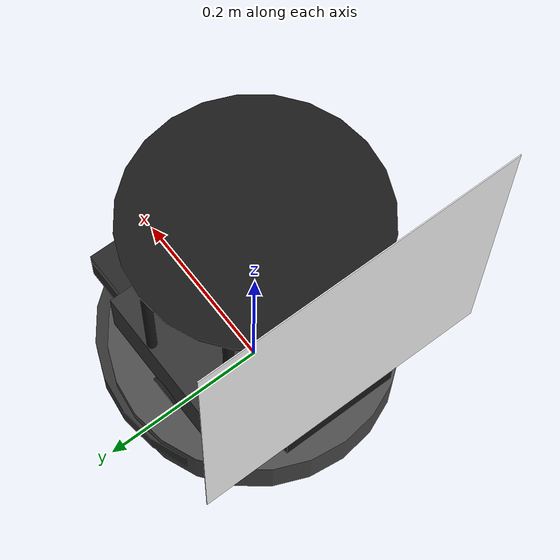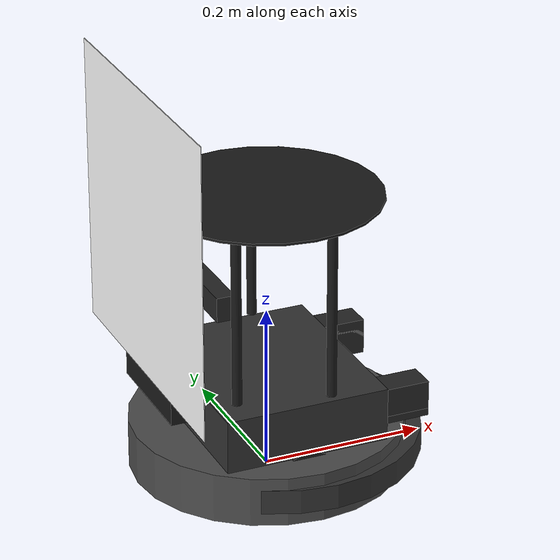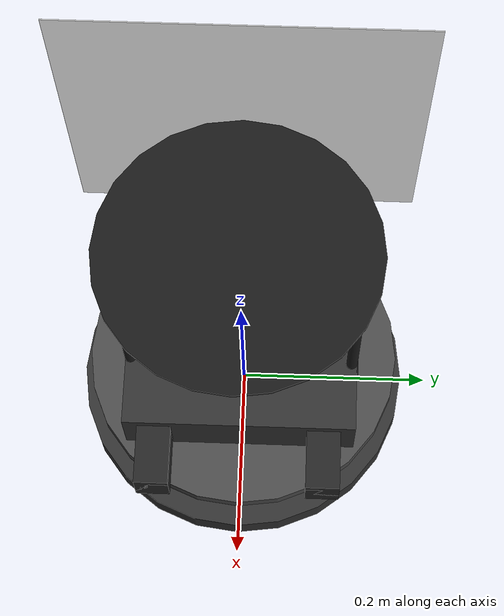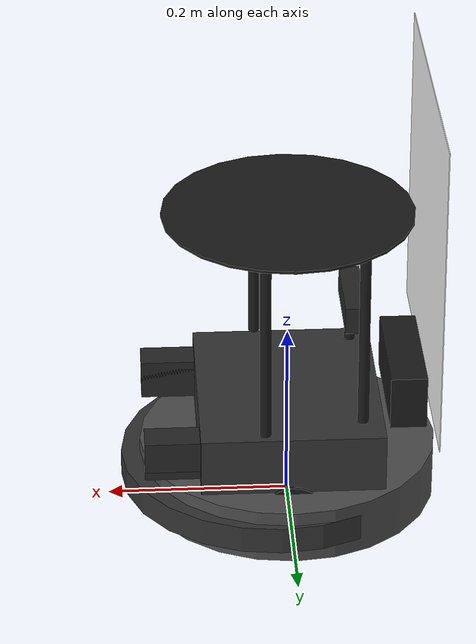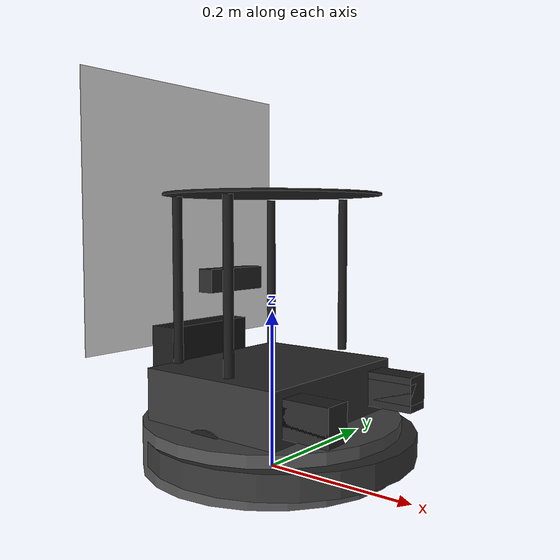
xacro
<?xml version="1.0" ?>
<robot name="turtlebot4" xmlns:xacro="http://ros.org/wiki/xacro">
  <!-- Namespace for Gazebo topics -->
  <xacro:arg name="namespace" default=""/>

  <!-- Enable/disable RPLIDAR sensor (set to 0 to disable for performance testing) -->
  <xacro:property name="enable_rplidar" value="0" />

  <!-- Base create3 model -->
  <xacro:include filename="$(find nav2_minimal_tb4_description)/urdf/icreate/create3.urdf.xacro" />
  <xacro:include filename="$(find nav2_minimal_tb4_description)/urdf/sensors/rplidar.urdf.xacro" />
  <xacro:include filename="$(find nav2_minimal_tb4_description)/urdf/sensors/oakd.urdf.xacro" />
  <xacro:include filename="$(find nav2_minimal_tb4_description)/urdf/sensors/proximity.urdf.xacro" />
  <xacro:include filename="$(find nav2_minimal_tb4_description)/urdf/sensors/camera_bracket.urdf.xacro" />
  <xacro:include filename="$(find nav2_minimal_tb4_description)/urdf/standard/tower_standoff.urdf.xacro" />
  <xacro:include filename="$(find nav2_minimal_tb4_description)/urdf/standard/tower_sensor_plate.urdf.xacro" />
  <xacro:include filename="$(find nav2_minimal_tb4_description)/urdf/standard/weight_block.urdf.xacro" />

  <!-- Mechanical properties -->
  <xacro:property name="shell_z_offset"                value="${3*cm2m}" />
  <xacro:property name="shell_radius"                  value="${12*cm2m}" />
  <xacro:property name="shell_length"                  value="${20*cm2m}" />
  <xacro:property name="shell_mass"                    value="0.390" />

  <xacro:property name="weight_x_offset"               value="${6.005267*cm2m}"/>
  <xacro:property name="weight_y_offset"               value="${8.758841*cm2m}"/>
  <xacro:property name="bottom_weight_z_offset"        value="${9.788546*cm2m}"/>
  <xacro:property name="top_weight_z_offset"           value="${10.688546*cm2m}"/>

  <xacro:property name="front_tower_standoff_x_offset" value="${3.063*cm2m}"/>
  <xacro:property name="front_tower_standoff_y_offset" value="${11.431*cm2m}"/>
  <xacro:property name="rear_tower_standoff_x_offset"  value="${-7.607*cm2m}"/>
  <xacro:property name="rear_tower_standoff_y_offset"  value="${9.066*cm2m}"/>

  <xacro:property name="tower_standoff_z_offset"       value="${14.757*cm2m}"/>
  <xacro:property name="tower_sensor_plate_z_offset"   value="${25.257*cm2m}"/>

  <xacro:property name="rplidar_x_offset"              value="${-4*cm2m}"/>
  <xacro:property name="rplidar_y_offset"              value="${0*cm2m}"/>
  <xacro:property name="rplidar_z_offset"              value="${9.8715*cm2m}"/>

  <xacro:property name="camera_mount_x_offset"         value="${-11.8*cm2m}"/>
  <xacro:property name="camera_mount_y_offset"         value="${0*cm2m}"/>
  <xacro:property name="camera_mount_z_offset"         value="${5.257*cm2m}"/>

  <xacro:property name="oakd_pro_x_offset"             value="${5.84*cm2m}"/>
  <xacro:property name="oakd_pro_y_offset"             value="${0*cm2m}"/>
  <xacro:property name="oakd_pro_z_offset"             value="${9.676*cm2m}"/>

  <joint name="shell_link_joint" type="fixed">
    <parent link="base_link"/>
    <child link="shell_link"/>
    <origin xyz="0 0 ${shell_z_offset + base_link_z_offset}" rpy="0 0 0"/>
  </joint>

  <!-- Add a base footprint definition -->
  <joint name="base_footprint_joint" type="fixed">
    <parent link="base_link"/>
    <child link="base_footprint"/>
    <origin xyz="0 0 0" rpy="0 0 0"/>
  </joint>
  <link name="base_footprint">
    <inertial>
      <mass value="0.0001"/>
      <origin xyz="0 0 0"/>
      <inertia ixx="0.0001" ixy="0.0" ixz="0.0" iyy="0.0001" iyz="0.0" izz="0.0001"/>
    </inertial>
    <visual>
      <origin rpy="0 0 0" xyz="0 0 0"/>
      <geometry>
        <box size="0.001 0.001 0.001"/>
      </geometry>
    </visual>
  </link>

  <!-- Turtlebot4 shell definition -->
  <link name="shell_link">
    <visual>
      <origin xyz="0 0 0" rpy="0 0 0"/>
      <geometry>
        <box size="${shell_length} ${shell_radius*2} 0.08"/>
      </geometry>
      <material name="darkgrey">
        <color rgba="0.2 0.2 0.2 1"/>
      </material>
    </visual>
    <collision name="shell_collision">
      <origin xyz="0 0 0" rpy="0 0 0"/>
      <geometry>
        <box size="${shell_length} ${shell_radius*2} 0.08"/>
      </geometry>
    </collision>
    <inertial>
      <mass value="${shell_mass}"/>
      <inertia ixx="0.00281295367" ixy="-0.00000137675" ixz="-0.00005790057"
	             iyy="0.00164666421" iyz="0.00000564466" izz="0.00424540124" />
    </inertial>
  </link>

  <gazebo reference="shell_link">
    <xacro:material_black/>
  </gazebo>

  <!-- ArUco marker at the back -->
  <joint name="aruco_marker_joint" type="fixed">
    <parent link="shell_link"/>
    <child link="aruco_marker_link"/>
    <origin xyz="-0.15 0 0.23" rpy="0 1.5708 1.5708"/>
  </joint>

  <link name="aruco_marker_link">
    <visual>
      <geometry>
        <box size="0.35 0.001 0.35"/>
      </geometry>
      <material name="aruco_marker">
        <color rgba="1 1 1 1"/>
      </material>
    </visual>
    <collision>
      <geometry>
        <box size="0.35 0.001 0.35"/>
      </geometry>
    </collision>
    <inertial>
      <mass value="0.001"/>
      <inertia ixx="0.000001" ixy="0" ixz="0" iyy="0.000001" iyz="0" izz="0.000001"/>
    </inertial>
  </link>

  <gazebo reference="aruco_marker_link">
    <visual>
      <material>
        <ambient>1 1 1 1</ambient>
        <diffuse>1 1 1 1</diffuse>
        <specular>0.1 0.1 0.1 1</specular>
        <pbr>
          <metal>
            <albedo_map>file:///home/ben/ros2_ws/nav2_minimal_turtlebot_simulation/nav2_minimal_tb4_sim/worlds/models/textures/aruco_mark_1.png</albedo_map>
          </metal>
        </pbr>
      </material>
    </visual>
  </gazebo>

  <xacro:weight_block name="front_left_bottom_weight_block">
    <origin xyz="${weight_x_offset} ${weight_y_offset} ${bottom_weight_z_offset}"/>
  </xacro:weight_block>

  <xacro:weight_block name="front_left_top_weight_block">
    <origin xyz="${weight_x_offset} ${weight_y_offset} ${top_weight_z_offset}"/>
  </xacro:weight_block>

  <xacro:weight_block name="front_right_bottom_weight_block">
    <origin xyz="${weight_x_offset} ${-weight_y_offset} ${bottom_weight_z_offset}"
            rpy="${pi} 0 0"/>
  </xacro:weight_block>

  <xacro:weight_block name="front_right_top_weight_block">
    <origin xyz="${weight_x_offset} ${-weight_y_offset} ${top_weight_z_offset}"
            rpy="${pi} 0 0"/>
  </xacro:weight_block>

  <!-- Turtlebot4 tower definition -->
  <xacro:tower_standoff name="front_left_tower_standoff">
    <origin xyz="${front_tower_standoff_x_offset} ${front_tower_standoff_y_offset} ${tower_standoff_z_offset}"/>
  </xacro:tower_standoff>

  <xacro:tower_standoff name="front_right_tower_standoff">
    <origin xyz="${front_tower_standoff_x_offset} ${-front_tower_standoff_y_offset} ${tower_standoff_z_offset}"/>
  </xacro:tower_standoff>

  <xacro:tower_standoff name="rear_left_tower_standoff">
    <origin xyz="${rear_tower_standoff_x_offset} ${rear_tower_standoff_y_offset} ${tower_standoff_z_offset}"/>
  </xacro:tower_standoff>

  <xacro:tower_standoff name="rear_right_tower_standoff">
    <origin xyz="${rear_tower_standoff_x_offset} ${-rear_tower_standoff_y_offset} ${tower_standoff_z_offset}"/>
  </xacro:tower_standoff>

  <xacro:tower_sensor_plate name="tower_sensor_plate">
    <origin xyz="0 0 ${tower_sensor_plate_z_offset}"/>
  </xacro:tower_sensor_plate>

  <!-- Turtlebot4 sensor definitions -->
  <xacro:if value="${enable_rplidar}">
    <xacro:rplidar name="rplidar" parent_link="shell_link" gazebo="$(arg gazebo)" namespace="$(arg namespace)">
      <origin xyz="${rplidar_x_offset} ${rplidar_y_offset} ${rplidar_z_offset}"
              rpy="0 0 ${pi/2}"/>
    </xacro:rplidar>
  </xacro:if>

  <xacro:camera_bracket name="oakd_camera_bracket">
    <origin xyz="${camera_mount_x_offset} ${camera_mount_y_offset} ${camera_mount_z_offset}"/>
  </xacro:camera_bracket>

  <xacro:oakd model="pro" parent_link="oakd_camera_bracket" namespace="$(arg namespace)">
    <origin xyz="${oakd_pro_x_offset} ${oakd_pro_y_offset} ${oakd_pro_z_offset}"/>
  </xacro:oakd>

  <!-- Proximity sensors ring on base_link -->
  <xacro:proximity_ring parent_link="base_link" gazebo="$(arg gazebo)" namespace="$(arg namespace)" radius="0.16" z_offset="0.05"/>

  <!-- Ground truth odometry publisher for Gazebo -->
  <xacro:arg name="gazebo" default=""/>
  <xacro:if value="${('$(arg gazebo)' == 'ignition' or '$(arg gazebo)' == 'gazebo')}">
    <gazebo>
      <plugin filename="libgz-sim-odometry-publisher-system.so" name="gz::sim::systems::OdometryPublisher">
        <odom_topic>$(arg namespace)/ground_truth_odom</odom_topic>
        <odom_frame>mission</odom_frame>
        <robot_base_frame>base_footprint</robot_base_frame>
        <odom_publish_frequency>10</odom_publish_frequency>
      </plugin>
    </gazebo>
  </xacro:if>

</robot>

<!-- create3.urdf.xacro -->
<robot name="create3" xmlns:xacro="http://ros.org/wiki/xacro">
  <xacro:include filename="$(find nav2_minimal_tb4_description)/urdf/icreate/bumper.urdf.xacro" />
  <xacro:include filename="$(find nav2_minimal_tb4_description)/urdf/icreate/caster.urdf.xacro" />
  <xacro:include filename="$(find nav2_minimal_tb4_description)/urdf/icreate/common_properties.urdf.xacro"/>
  <xacro:include filename="$(find nav2_minimal_tb4_description)/urdf/icreate/sensors/imu.urdf.xacro" />
  <xacro:include filename="$(find nav2_minimal_tb4_description)/urdf/icreate/wheel.urdf.xacro" />

  <!-- Gazebo version -->
  <xacro:arg name="gazebo"                       default="ignition" />

  <!-- Namespace -->
  <xacro:arg name="namespace"                    default=""/>

  <!-- Mechanical properties -->
  <xacro:property name="body_z_offset"           value="${-2.5*cm2m}" />
  <!-- Raise collision up to avoid floor penetration when spawning (more clearance) -->
  <xacro:property name="body_collision_z_offset" value="${3*cm2m}" />
  <xacro:property name="body_mass"               value="2.300" />
  <xacro:property name="body_radius"             value="${16.4*cm2m}" />
  <xacro:property name="body_length"             value="${6*cm2m}" />

  <xacro:property name="body_cog_x_offset"       value="${2.28*cm2m}" />

  <xacro:property name="bumper_mass"             value="0.1" />
  <xacro:property name="bumper_offset_z"         value="${-2.5*cm2m}" />
  <xacro:property name="bumper_inertial_x"       value="${8*cm2m}" />
  <xacro:property name="bumper_inertial_z"       value="${2*cm2m}"/>

  <xacro:property name="wheel_height"            value="${-2.75*cm2m}" />
  <xacro:property name="distance_between_wheels" value="${23.3*cm2m}" />

  <xacro:property name="caster_position_x"       value="${12.5*cm2m}" />
  <xacro:property name="caster_position_z"       value="${-5.03*cm2m}" />

  <xacro:property name="wheel_drop_offset_z"     value="${3.5*mm2m}"/>
  <xacro:property name="wheel_drop_z"            value="${wheel_height + wheel_drop_offset_z}"/>

  <xacro:property name="base_link_z_offset"     value="${6.42*cm2m}"/>

  <!-- Create 3 base definition-->
  <link name="base_link">
    <visual>
      <origin xyz="0 0 ${body_z_offset + base_link_z_offset}" rpy="0 0 0"/>
      <geometry>
        <cylinder length="${body_length}" radius="${body_radius}"/>
      </geometry>
      <material name="darkgrey">
        <color rgba="0.3 0.3 0.3 1"/>
      </material>
    </visual>
    <collision name="create3_base_collision">
      <origin xyz="0 0 ${body_z_offset + body_collision_z_offset  + base_link_z_offset}" rpy="0 0 0"/>
      <geometry>
        <cylinder length="${body_length}" radius="${body_radius}"/>
      </geometry>
    </collision>
    <xacro:inertial_cylinder_with_pose mass="${body_mass}" radius="${body_radius}" length="${body_length}">
      <origin xyz="${body_cog_x_offset} 0 ${body_collision_z_offset + base_link_z_offset}"/>
    </xacro:inertial_cylinder_with_pose>
  </link>

  <gazebo reference="base_link">
    <xacro:material_darkgray/>
  </gazebo>

  <!-- Bumper -->
  <xacro:bumper
      gazebo="$(arg gazebo)"
      namespace="$(arg namespace)"
      visual_mesh="package://nav2_minimal_tb4_description/meshes/bumper_visual.dae"
      collision_mesh="package://nav2_minimal_tb4_description/meshes/bumper_collision.dae">
    <origin xyz="0 0 ${bumper_offset_z  + base_link_z_offset}"/>
    <inertial>
      <origin xyz="${bumper_inertial_x} 0 ${bumper_inertial_z}"/>
      <mass value="${bumper_mass}"/>
      <inertia ixx="0.0013483753405" ixy="0.0000000454352" ixz="0.0000014434849"
               iyy="0.0002521736852" iyz="-0.0000000006721" izz="0.0015442525386"/>
    </inertial>
  </xacro:bumper>

  <!-- Wheels with mechanical wheel drop -->
  <xacro:wheel name="left" gazebo="$(arg gazebo)">
    <origin xyz="0 ${distance_between_wheels/2} ${wheel_drop_z  + base_link_z_offset}" rpy="${-pi/2} 0 0"/>
  </xacro:wheel>

  <xacro:wheel name="right" gazebo="$(arg gazebo)">
    <origin xyz="0 ${-distance_between_wheels/2} ${wheel_drop_z  + base_link_z_offset}" rpy="${-pi/2} 0 0"/>
  </xacro:wheel>

  <!-- Caster wheel -->
  <xacro:caster name="front_caster" parent_link="base_link">
    <origin xyz="${caster_position_x} 0 ${caster_position_z  + base_link_z_offset}" rpy="${-pi/2} 0 0"/>
  </xacro:caster>

  <!-- IMU -->
  <xacro:imu_sensor gazebo="$(arg gazebo)" namespace="$(arg namespace)">
    <origin xyz="0.050613 0.043673 ${0.0202 + base_link_z_offset}"/>
  </xacro:imu_sensor>

  <gazebo>
      <plugin
        filename="gz-sim-diff-drive-system"
        name="gz::sim::systems::DiffDrive">
        <left_joint>left_wheel_joint</left_joint>
        <right_joint>right_wheel_joint</right_joint>
        <wheel_separation>0.233</wheel_separation>
        <wheel_radius>0.03575</wheel_radius>
        <max_linear_acceleration>2</max_linear_acceleration>
        <min_linear_acceleration>-2</min_linear_acceleration>
        <max_angular_acceleration>3</max_angular_acceleration>
        <min_angular_acceleration>-3</min_angular_acceleration>
        <max_linear_velocity>0.5</max_linear_velocity>
        <min_linear_velocity>-0.5</min_linear_velocity>
        <max_angular_velocity>2.0</max_angular_velocity>
        <min_angular_velocity>-2.0</min_angular_velocity>
        <topic>$(arg namespace)/cmd_vel</topic>
        <odom_topic>$(arg namespace)/odom</odom_topic>
        <tf_topic>$(arg namespace)/tf</tf_topic>
        <frame_id>odom</frame_id>
        <child_frame_id>base_link</child_frame_id>
        <odom_publish_frequency>30</odom_publish_frequency>
      </plugin>

      <plugin
        filename="gz-sim-joint-state-publisher-system"
        name="gz::sim::systems::JointStatePublisher">
        <joint_name>left_wheel_joint</joint_name>
        <joint_name>right_wheel_joint</joint_name>
        <topic>$(arg namespace)/joint_states</topic>
        <update_rate>30</update_rate>
      </plugin>
  </gazebo>

</robot>

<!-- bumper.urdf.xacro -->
<robot xmlns:xacro="http://ros.org/wiki/xacro">

<!-- The robot has a bumper with 5 contact sensors. The center one is
functional, while the 4 remaining ones are created as dummy links. -->
<xacro:macro name="dummy_bumper_zone" params="name parent_link:=base_link *origin">
  <xacro:property name="link_name" value="${name}"/>
  <xacro:property name="joint_name" value="${name}_joint"/>

  <joint name="${joint_name}" type="fixed">
    <parent link="${parent_link}"/>
    <child link="${link_name}"/>
    <xacro:insert_block name="origin"/>
  </joint>
  <link name="${link_name}"/>
</xacro:macro>

<xacro:macro name="bumper" params="name:=bumper namespace parent_link:=base_link update_rate:=62.0 gazebo visual_mesh collision_mesh
  *origin *inertial">
  <xacro:property name="link_name" value="${name}"/>
  <xacro:property name="joint_name" value="${name}_joint"/>

  <joint name="${joint_name}" type="fixed">
    <parent link="${parent_link}"/>
    <child link="${link_name}"/>
    <xacro:insert_block name="origin"/>
  </joint>
  <link name="${link_name}">
    <visual>
      <origin xyz="0.015 0 0" rpy="0 0 0"/>
      <geometry>
        <cylinder radius="0.17" length="0.03"/>
      </geometry>
      <material name="darkgrey">
        <color rgba="0.2 0.2 0.2 1"/>
      </material>
    </visual>
    <collision>
      <origin xyz="0.015 0 0" rpy="0 0 0"/>
      <geometry>
        <cylinder radius="0.164" length="0.03"/>
      </geometry>
    </collision>
    <xacro:insert_block name="inertial"/>
  </link>

  <gazebo reference="${link_name}">
    <material>Gazebo/DarkGrey</material>
  </gazebo>

  <xacro:dummy_bumper_zone
      name="bump_front_center">
      <origin xyz="0.175 0 0.039" rpy="0 0 0"/>
  </xacro:dummy_bumper_zone>

  <xacro:dummy_bumper_zone
      name="bump_front_left">
      <origin xyz="0.02345 -0.0875 0.025" rpy="0 0 0.5235985"/>
  </xacro:dummy_bumper_zone>

  <xacro:dummy_bumper_zone
      name="bump_front_right">
      <origin xyz="0.02345 0.0875 0.025" rpy="0 0 -0.5235985"/>
  </xacro:dummy_bumper_zone>

  <xacro:dummy_bumper_zone
      name="bump_left">
      <origin xyz="0.0875 -0.15155 0.025" rpy="0 0 1.047193"/>
  </xacro:dummy_bumper_zone>

  <xacro:dummy_bumper_zone
      name="bump_right">
      <origin xyz="0.0875 0.15155 0.025" rpy="0 0 -1.047193"/>
  </xacro:dummy_bumper_zone>

</xacro:macro>

</robot>

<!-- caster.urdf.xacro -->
<robot xmlns:xacro="http://ros.org/wiki/xacro">

<xacro:macro name="caster" params="name parent_link *origin">
  <xacro:include filename="$(find nav2_minimal_tb4_description)/urdf/icreate/common_properties.urdf.xacro"/>

  <xacro:property name="radius" value="${1*cm2m}" />
  <xacro:property name="mass"   value="0.01"/>

  <joint name="${name}_joint" type="fixed">
    <parent link="${parent_link}"/>
    <child link="${name}_link"/>
    <xacro:insert_block name="origin"/>
  </joint>
  <link name="${name}_link">
    <visual>
      <geometry>
        <sphere radius="${radius}"/>
      </geometry>
      <!-- Give black color to caster in Rviz -->
      <xacro:insert_block name="material_black"/>
    </visual>
    <collision>
      <geometry>
        <sphere radius="${radius}"/>
      </geometry>
    </collision>
    <xacro:inertial_sphere mass="${mass}" radius="${radius}"/>
  </link>

  <gazebo reference="${name}_joint">
    <preserveFixedJoint>true</preserveFixedJoint>
  </gazebo>

  <gazebo reference="${name}_link">
    <material>Gazebo/DarkGrey</material>
    <mu1>0.0</mu1>
    <mu2>0.0</mu2>
    <slip1>0.2</slip1>
    <slip2>0.2</slip2>
    <kp>200000.0</kp>
    <kd>5.0</kd>
  </gazebo>

</xacro:macro>
</robot>

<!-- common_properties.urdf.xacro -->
<!-- Various useful macros -->
<robot name="xacro_properties" xmlns:xacro="http://ros.org/wiki/xacro">

  <xacro:macro name="inertial_cuboid_with_pose" params="mass x y z *origin">
    <inertial>
      <mass value="${mass}" />
      <xacro:insert_block name="origin"/>
      <inertia ixx="${(1/12) * mass * (y*y + z*z)}" ixy="0.0" ixz="0.0"
        iyy="${(1/12) * mass * (x*x + z*z)}" iyz="0.0"
        izz="${(1/12) * mass * (x*x + y*y)}" />
    </inertial>
  </xacro:macro>

  <xacro:macro name="inertial_cuboid" params="mass x y z">
    <xacro:inertial_cuboid_with_pose mass="${mass}" x="${x}" y="${y}" z="${z}">
      <origin xyz="0 0 0" />
    </xacro:inertial_cuboid_with_pose>
  </xacro:macro>

  <xacro:macro name="inertial_cylinder_with_pose" params="mass radius length *origin">
    <inertial>
      <xacro:insert_block name="origin"/>
      <mass value="${mass}" />
      <inertia ixx="${(1/12) * mass * (3*radius*radius + length*length)}" ixy="0.0" ixz="0.0"
        iyy="${(1/12) * mass * (3*radius*radius + length*length)}" iyz="0.0"
        izz="${(1/2) * mass * (radius*radius)}" />
    </inertial>
  </xacro:macro>

  <xacro:macro name="inertial_cylinder" params="mass radius length">
    <xacro:inertial_cylinder_with_pose mass="${mass}" radius="${radius}" length="${length}">
      <origin xyz="0 0 0" />
    </xacro:inertial_cylinder_with_pose>
  </xacro:macro>

  <xacro:macro name="inertial_sphere" params="mass radius">
    <inertial>
      <mass value="${mass}" />
      <inertia ixx="${(2/5) * mass * radius * radius}" ixy="0.0" ixz="0.0"
	             iyy="${(2/5) * mass * radius * radius}" iyz="0.0"
	             izz="${(2/5) * mass * radius * radius}" />
    </inertial>
  </xacro:macro>

  <xacro:macro name="inertial_dummy">
    <xacro:inertial_cuboid mass="0.01" x="0.01" y="0.01" z="0.01"/>
  </xacro:macro>

  <xacro:macro name="ray_sensor"
    params="sensor_name gazebo update_rate visualize
            h_samples h_res h_min_angle h_max_angle
            r_min r_max r_res namespace:='' *plugin">
    <sensor name="${sensor_name}" type="gpu_lidar">
      <update_rate>${update_rate}</update_rate>
      <visualize>${visualize}</visualize>
      <always_on>true</always_on>
      <gz_frame_id>${sensor_name}_link</gz_frame_id>
      <topic>${namespace}/scan</topic>
      <lidar>
        <scan>
          <horizontal>
            <samples>${h_samples}</samples>
            <resolution>${h_res}</resolution>
            <min_angle>${h_min_angle}</min_angle>
            <max_angle>${h_max_angle}</max_angle>
          </horizontal>
        </scan>
        <range>
          <min>${r_min}</min>
          <max>${r_max}</max>
          <resolution>${r_res}</resolution>
        </range>
      </lidar>
    </sensor>
  </xacro:macro>

  <!-- Conversion macros -->
  <xacro:property name="cm2m"    value="${1/100.0}"/>
  <xacro:property name="mm2m"    value="${1/1000.0}"/>
  <xacro:property name="in2m"    value="0.0254"/>
  <xacro:property name="deg2rad" value="${pi/180.0}"/>

  <!-- Material colors -->
  <xacro:property name="material_black">
    <material name="black">
      <color rgba="0.1 0.1 0.1 1"/>
    </material>
  </xacro:property>

  <!-- Material macros -->
  <xacro:macro name="material_black">
    <visual>
      <material>
        <diffuse>0 0 0 1</diffuse>
        <specular>${80/255} ${80/255} ${80/255} 1</specular>
        <emissive>0 0 0 1</emissive>
      </material>
    </visual>
  </xacro:macro>

  <xacro:macro name="material_darkgray">
    <visual>
      <material>
        <diffuse>${3/255} ${3/255} ${3/255} 1</diffuse>
        <specular>0 0 0 1</specular>
        <emissive>0 0 0 1</emissive>
      </material>
    </visual>
  </xacro:macro>

</robot>

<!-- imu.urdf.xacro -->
<robot xmlns:xacro="http://ros.org/wiki/xacro">

<xacro:macro name="imu_sensor" params="name:=imu gazebo namespace parent:=base_link update_rate:=200 *origin">

  <joint name="${name}_joint" type="fixed">
    <xacro:insert_block name="origin"/>
    <parent link="${parent}"/>
    <child link="${name}_link"/>
  </joint>

  <link name="${name}_link">
      <xacro:inertial_dummy />
  </link>

  <gazebo reference="${name}_link">
    <sensor type="imu" name="${name}">
      <always_on>true</always_on>
      <update_rate>${update_rate}</update_rate>
      <topic>${namespace}/imu</topic>
      <imu>
        <angular_velocity>
          <x>
            <noise type="gaussian">
              <mean>0.0</mean>
              <stddev>0.0</stddev>
            </noise>
          </x>
          <y>
            <noise type="gaussian">
              <mean>0.0</mean>
              <stddev>0.0</stddev>
            </noise>
          </y>
          <z>
            <noise type="gaussian">
              <mean>0.0</mean>
              <stddev>0.0</stddev>
            </noise>
          </z>
        </angular_velocity>
        <linear_acceleration>
          <x>
            <noise type="gaussian">
              <mean>0.0</mean>
              <stddev>0.0</stddev>
            </noise>
          </x>
          <y>
            <noise type="gaussian">
              <mean>0.0</mean>
              <stddev>0.0</stddev>
            </noise>
          </y>
          <z>
            <noise type="gaussian">
              <mean>0.0</mean>
              <stddev>0.0</stddev>
            </noise>
          </z>
        </linear_acceleration>
      </imu>
    </sensor>
  </gazebo>

  <gazebo reference="${name}_joint">
    <preserveFixedJoint>true</preserveFixedJoint>
  </gazebo>

</xacro:macro>
</robot>

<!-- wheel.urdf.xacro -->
<robot xmlns:xacro="http://ros.org/wiki/xacro">

<xacro:macro name="wheel" params="name gazebo parent_link:=base_link *origin">

  <xacro:property name="mass"   value="0.2" />
  <xacro:property name="radius" value="${3.575*cm2m}" />
  <xacro:property name="width"  value="${1.5*cm2m}" />

  <xacro:property name="wheel_link_name"  value="${name}_wheel"/>
  <xacro:property name="wheel_joint_name" value="${wheel_link_name}_joint"/>

  <joint name="${wheel_joint_name}" type="continuous">
    <parent link="${parent_link}"/>
    <child link="${wheel_link_name}"/>
    <xacro:insert_block name="origin"/>
    <axis xyz="0 0 1"/>
  </joint>

  <link name="${wheel_link_name}">
    <visual>
      <geometry>
        <cylinder length="${width}" radius="${radius}"/>
      </geometry>
      <!-- Give black color to wheels in Rviz -->
      <xacro:insert_block name="material_black"/>
    </visual>
    <collision>
      <geometry>
        <cylinder length="${width}" radius="${radius}"/>
      </geometry>
    </collision>
    <xacro:inertial_cylinder mass="${mass}" radius="${radius}"
      length="${width}" />
  </link>

  <gazebo reference="${wheel_link_name}">
    <mu1>0.9</mu1>
    <mu2>0.9</mu2>
    <slip1>0.1</slip1>
    <slip2>0.1</slip2>
    <kp>200000.0</kp>
    <kd>20.0</kd>
    <minDepth>0.001</minDepth>
    <maxVel>1.0</maxVel>
    <material>Gazebo/DarkGrey</material>
  </gazebo>

</xacro:macro>
</robot>

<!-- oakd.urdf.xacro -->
<robot xmlns:xacro="http://ros.org/wiki/xacro">

<xacro:macro name="oakd" params="name:=oakd parent_link *origin model:=pro namespace:=''">
  <xacro:include filename="$(find nav2_minimal_tb4_description)/urdf/icreate/common_properties.urdf.xacro"/>

  <xacro:property name="mass"       value="0.061"/>
  <xacro:property name="baseline" value="0.075" />
  <xacro:property name="M_PI"     value="3.1415926535897931" />

  <xacro:property name="collision_length_x"   value="${2.25*cm2m}" />
  <xacro:property name="collision_length_y"   value="${9.7*cm2m}" />
  <xacro:property name="collision_length_z"   value="${3*cm2m}" />

  <xacro:property name="collision_offset_x"   value="${-1.1*cm2m}" />
  <xacro:property name="collision_offset_y"   value="${0*cm2m}" />
  <xacro:property name="collision_offset_z"   value="${-0.5*cm2m}" />

  <xacro:property name="base_frame" value="${name}_link"/>

  <!-- Base frame -->
  <joint name="${name}_joint" type="fixed">
    <parent link="${parent_link}"/>
    <child link="${base_frame}"/>
    <xacro:insert_block name="origin"/>
  </joint>

  <link name="${base_frame}">
    <visual>
      <origin xyz="${collision_offset_x} ${collision_offset_y} ${collision_offset_z}" rpy="0 0 0"/>
      <geometry>
        <box size="${collision_length_x} ${collision_length_y} ${collision_length_z}"/>
      </geometry>
      <material name="darkgrey">
        <color rgba="0.15 0.15 0.15 1"/>
      </material>
    </visual>
    <collision>
      <origin xyz="${collision_offset_x} ${collision_offset_y} ${collision_offset_z}"/>
      <geometry>
        <box size="${collision_length_x} ${collision_length_y} ${collision_length_z}"/>
      </geometry>
    </collision>
    <inertial>
      <mass value="${mass}"/>
      <inertia ixx="0.00000202475" ixy="0.0" ixz="0.0"
	             iyy="0.00001527320" iyz="0.0" izz="0.00001605536" />
    </inertial>
  </link>

  <gazebo reference="${base_frame}">
    <material>Gazebo/DarkGrey</material>
  </gazebo>

  <!-- RGB Camera -->
  <link name="${name}_rgb_camera_frame">
    <xacro:inertial_dummy/>
  </link>

  <joint name="${name}_rgb_camera_joint" type="fixed">
      <parent link="${base_frame}"/>
      <child link="${name}_rgb_camera_frame"/>
      <origin xyz="0 0 0" rpy="0 0 0" />
  </joint>

  <link name="${name}_rgb_camera_optical_frame">
    <xacro:inertial_dummy/>
  </link>

  <joint name="${name}_rgb_camera_optical_joint" type="fixed">
      <origin xyz="0 0 0" rpy="-${M_PI/2} 0.0 -${M_PI/2}"/>
      <parent link="${name}_rgb_camera_frame"/>
      <child link="${name}_rgb_camera_optical_frame"/>
  </joint>

  <!-- Left Camera -->
  <link name="${name}_left_camera_frame">
    <xacro:inertial_dummy/>
  </link>

  <joint name="${name}_left_camera_joint" type="fixed">
      <parent link="${base_frame}"/>
      <child link="${name}_left_camera_frame"/>
      <origin xyz="0 ${baseline/2} 0" rpy="0 0 0" />
  </joint>

  <link name="${name}_left_camera_optical_frame">
    <xacro:inertial_dummy/>
  </link>

  <joint name="${name}_left_camera_optical_joint" type="fixed">
      <origin xyz="0 0 0" rpy="-${M_PI/2} 0.0 -${M_PI/2}"/>
      <parent link="${name}_left_camera_frame"/>
      <child link="${name}_left_camera_optical_frame"/>
  </joint>

  <!-- Right Camera -->
  <link name="${name}_right_camera_frame">
    <xacro:inertial_dummy/>
  </link>

  <joint name="${name}_right_camera_joint" type="fixed">
      <parent link="${base_frame}"/>
      <child link="${name}_right_camera_frame"/>
      <origin xyz="0 -${baseline/2} 0" rpy="0 0 0" />
  </joint>

  <link name="${name}_right_camera_optical_frame">
    <xacro:inertial_dummy/>
  </link>

  <joint name="${name}_right_camera_optical_joint" type="fixed">
      <origin xyz="0 0 0" rpy="-${M_PI/2} 0.0 -${M_PI/2}"/>
      <parent link="${name}_right_camera_frame"/>
      <child link="${name}_right_camera_optical_frame"/>
  </joint>

  <!-- IMU -->
  <link name="${name}_imu_frame">
    <xacro:inertial_dummy/>
  </link>

  <joint name="${name}_imu_joint" type="fixed">
      <parent link="${base_frame}"/>
      <child link="${name}_imu_frame"/>
      <origin xyz="0 0 0" rpy="-${M_PI/2} 0 -${M_PI/2}" />
  </joint>

  <!-- Gazebo links and joints -->
  <gazebo reference="${name}_rgb_camera_frame">
    <sensor name="rgbd_camera" type="rgbd_camera">
      <always_on>1</always_on>
      <camera>
        <horizontal_fov>1.25</horizontal_fov>
        <image>
          <width>320</width>
          <height>240</height>
        </image>
        <clip>
          <near>0.3</near>
          <far>100</far>
        </clip>
        <optical_frame_id>${name}_rgb_camera_optical_frame</optical_frame_id>
      </camera>
      <update_rate>10</update_rate>
      <visualize>false</visualize>
      <topic>${namespace}/rgbd_camera</topic>
    </sensor>
    <xacro:material_darkgray/>
  </gazebo>

  <gazebo reference="${name}_joint">
    <preserveFixedJoint>true</preserveFixedJoint>
  </gazebo>

  <gazebo reference="${name}_rgb_camera_joint">
    <preserveFixedJoint>true</preserveFixedJoint>
  </gazebo>

  <gazebo reference="${name}_rgb_camera_optical_joint">
    <preserveFixedJoint>true</preserveFixedJoint>
  </gazebo>

  <gazebo reference="${name}_left_camera_joint">
    <preserveFixedJoint>true</preserveFixedJoint>
  </gazebo>

  <gazebo reference="${name}_left_camera_optical_joint">
    <preserveFixedJoint>true</preserveFixedJoint>
  </gazebo>

  <gazebo reference="${name}_right_camera_joint">
    <preserveFixedJoint>true</preserveFixedJoint>
  </gazebo>

  <gazebo reference="${name}_right_camera_optical_joint">
    <preserveFixedJoint>true</preserveFixedJoint>
  </gazebo>

  <gazebo reference="${name}_imu_joint">
    <preserveFixedJoint>true</preserveFixedJoint>
  </gazebo>

</xacro:macro>
</robot>

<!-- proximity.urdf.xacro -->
<robot xmlns:xacro="http://ros.org/wiki/xacro">
  <!-- Proximity sensors ring - 7 individual IR proximity detectors arranged 360° around robot -->

  <xacro:include filename="$(find nav2_minimal_tb4_description)/urdf/icreate/common_properties.urdf.xacro"/>

  <xacro:macro name="proximity_sensor" params="name parent_link gazebo namespace angle_deg radius z_offset">
    <xacro:property name="angle_rad" value="${angle_deg * deg2rad}"/>
    <xacro:property name="x" value="${radius * cos(angle_rad)}"/>
    <xacro:property name="y" value="${radius * sin(angle_rad)}"/>

    <!-- Individual proximity sensor link -->
    <joint name="${name}_joint" type="fixed">
      <parent link="${parent_link}"/>
      <child link="${name}_link"/>
      <origin xyz="${x} ${y} ${z_offset}" rpy="0 0 ${angle_rad}"/>
    </joint>

    <link name="${name}_link">
      <visual>
        <geometry>
          <cylinder radius="0.008" length="0.005"/>
        </geometry>
        <material name="proximity_sensor_black">
          <color rgba="0.0 0.0 0.0 1"/>
        </material>
      </visual>
      <collision>
        <geometry>
          <cylinder radius="0.008" length="0.005"/>
        </geometry>
      </collision>
      <xacro:inertial_dummy/>
    </link>

    <!-- Individual IR proximity sensor - narrow beam pointing forward from sensor orientation -->
    <gazebo reference="${name}_link">
      <sensor name="${name}" type="gpu_lidar">
        <always_on>true</always_on>
        <update_rate>6</update_rate>
        <visualize>false</visualize>
        <topic>${namespace}/proximity/${name}</topic>
        <gz_frame_id>${name}_link</gz_frame_id>
        <lidar>
          <scan>
            <horizontal>
              <samples>1</samples>
              <resolution>1.0</resolution>
              <min_angle>-0.087</min_angle>
              <max_angle>0.087</max_angle>
            </horizontal>
          </scan>
          <range>
            <min>0.01</min>
            <max>0.15</max>
            <resolution>0.01</resolution>
          </range>
        </lidar>
      </sensor>
      <material>Gazebo/Black</material>
    </gazebo>
  </xacro:macro>

  <!-- Proximity ring: 7 sensors in forward-facing fan pattern at specified angles -->
  <xacro:macro name="proximity_ring" params="parent_link gazebo namespace radius:=0.162 z_offset:=0.10">
    <xacro:proximity_sensor name="proximity_1" parent_link="${parent_link}" gazebo="${gazebo}" namespace="${namespace}" angle_deg="-65.3" radius="${radius}" z_offset="${z_offset}"/>
    <xacro:proximity_sensor name="proximity_2" parent_link="${parent_link}" gazebo="${gazebo}" namespace="${namespace}" angle_deg="-38.0" radius="${radius}" z_offset="${z_offset}"/>
    <xacro:proximity_sensor name="proximity_3" parent_link="${parent_link}" gazebo="${gazebo}" namespace="${namespace}" angle_deg="-20.0" radius="${radius}" z_offset="${z_offset}"/>
    <xacro:proximity_sensor name="proximity_4" parent_link="${parent_link}" gazebo="${gazebo}" namespace="${namespace}" angle_deg="-3.0" radius="${radius}" z_offset="${z_offset}"/>
    <xacro:proximity_sensor name="proximity_5" parent_link="${parent_link}" gazebo="${gazebo}" namespace="${namespace}" angle_deg="14.25" radius="${radius}" z_offset="${z_offset}"/>
    <xacro:proximity_sensor name="proximity_6" parent_link="${parent_link}" gazebo="${gazebo}" namespace="${namespace}" angle_deg="34.0" radius="${radius}" z_offset="${z_offset}"/>
    <xacro:proximity_sensor name="proximity_7" parent_link="${parent_link}" gazebo="${gazebo}" namespace="${namespace}" angle_deg="65.3" radius="${radius}" z_offset="${z_offset}"/>
  </xacro:macro>
</robot>

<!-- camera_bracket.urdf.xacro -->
<robot xmlns:xacro="http://ros.org/wiki/xacro">

<xacro:include filename="$(find nav2_minimal_tb4_description)/urdf/icreate/common_properties.urdf.xacro"/>

<xacro:macro name="camera_bracket" params="name parent_link:=shell_link *origin">

  <xacro:property name="mass" value="0.033"/>

  <xacro:property name="link_name" value="${name}"/>
  <xacro:property name="joint_name" value="${name}_joint"/>

  <joint name="${joint_name}" type="fixed">
    <parent link="${parent_link}"/>
    <child link="${link_name}"/>
    <xacro:insert_block name="origin"/>
  </joint>

  <link name="${link_name}">
    <visual>
      <origin xyz="-0.01 0 0" rpy="0 0 0"/>
      <geometry>
        <box size="0.04 0.14 0.06"/>
      </geometry>
      <material name="darkgrey">
        <color rgba="0.1 0.1 0.1 1"/>
      </material>
    </visual>
    <collision>
      <origin xyz="-0.01 0 0" rpy="0 0 0"/>
      <geometry>
        <box size="0.04 0.14 0.06"/>
      </geometry>
    </collision>
    <inertial>
      <mass value="${mass}"/>
      <inertia ixx="0.0000579181" ixy="0.0" ixz="0.0000090679"
	             iyy="0.0000559785" iyz="0.0" izz="0.0000140955" />
    </inertial>
  </link>

  <gazebo reference="${link_name}">
    <material>Gazebo/DarkGrey</material>
  </gazebo>

  <gazebo reference="${joint_name}">
    <preserveFixedJoint>true</preserveFixedJoint>
  </gazebo>

  <gazebo reference="${link_name}">
    <xacro:material_black/>
  </gazebo>

</xacro:macro>

</robot>

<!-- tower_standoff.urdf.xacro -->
<robot xmlns:xacro="http://ros.org/wiki/xacro">

<xacro:include filename="$(find nav2_minimal_tb4_description)/urdf/icreate/common_properties.urdf.xacro"/>

<xacro:macro name="tower_standoff" params="name parent_link:=shell_link *origin">

  <xacro:property name="link_name" value="${name}"/>
  <xacro:property name="joint_name" value="${name}_joint"/>

  <xacro:property name="mass" value="0.260"/>

  <joint name="${joint_name}" type="fixed">
    <parent link="${parent_link}"/>
    <child link="${link_name}"/>
    <xacro:insert_block name="origin"/>
  </joint>

  <link name="${link_name}">
    <visual>
      <origin xyz="0 0 0" rpy="0 0 0"/>
      <geometry>
        <cylinder radius="0.006" length="0.205"/>
      </geometry>
      <material name="darkgrey">
        <color rgba="0.1 0.1 0.1 1"/>
      </material>
    </visual>
    <collision>
      <origin rpy="0 0 0"/>
      <geometry>
        <cylinder radius="0.006" length="0.205"/>
      </geometry>
    </collision>
    <inertial>
      <mass value="${mass}"/>
      <inertia ixx="0.00000019604" ixy="0.0" ixz="0.0"
	             iyy="0.00005262313" iyz="0.0" izz="0.00005262313" />
    </inertial>
  </link>

  <gazebo reference="${link_name}">
    <material>Gazebo/DarkGrey</material>
  </gazebo>

  <gazebo reference="${joint_name}">
    <preserveFixedJoint>true</preserveFixedJoint>
  </gazebo>

  <gazebo reference="${link_name}">
    <xacro:material_black/>
  </gazebo>

</xacro:macro>

</robot>

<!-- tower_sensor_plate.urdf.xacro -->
<robot xmlns:xacro="http://ros.org/wiki/xacro">

<xacro:include filename="$(find nav2_minimal_tb4_description)/urdf/icreate/common_properties.urdf.xacro"/>

<xacro:macro name="tower_sensor_plate" params="name parent_link:=shell_link *origin">

  <xacro:property name="link_name" value="${name}"/>
  <xacro:property name="joint_name" value="${name}_joint"/>

  <xacro:property name="mass" value="0.332"/>

  <joint name="${joint_name}" type="fixed">
    <parent link="${parent_link}"/>
    <child link="${link_name}"/>
    <xacro:insert_block name="origin"/>
  </joint>

  <link name="${link_name}">
    <visual>
      <origin xyz="0 0 0.001" rpy="0 0 0"/>
      <geometry>
        <cylinder radius="0.137" length="0.003"/>
      </geometry>
      <material name="darkgrey">
        <color rgba="0.1 0.1 0.1 1"/>
      </material>
    </visual>
    <collision>
      <origin xyz="0 0 0.001"/>
      <geometry>
        <cylinder radius="0.137" length="0.003"/>
      </geometry>
    </collision>
    <inertial>
      <mass value="${mass}"/>
      <inertia ixx="0.00092982299" ixy="0.0" ixz="0.0"
	             iyy="0.00083033498" iyz="0.0" izz="0.00175985947" />
    </inertial>
  </link>

  <gazebo reference="${link_name}">
    <material>Gazebo/DarkGrey</material>
  </gazebo>

  <gazebo reference="${joint_name}">
    <preserveFixedJoint>true</preserveFixedJoint>
  </gazebo>

  <gazebo reference="${link_name}">
    <xacro:material_black/>
  </gazebo>

</xacro:macro>

</robot>

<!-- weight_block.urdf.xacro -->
<robot xmlns:xacro="http://ros.org/wiki/xacro">

<xacro:include filename="$(find nav2_minimal_tb4_description)/urdf/icreate/common_properties.urdf.xacro"/>

<xacro:macro name="weight_block" params="name parent_link:=base_link *origin">

  <xacro:property name="link_name" value="${name}"/>
  <xacro:property name="joint_name" value="${name}_joint"/>

  <xacro:property name="mass" value="0.061"/>

  <joint name="${joint_name}" type="fixed">
    <parent link="${parent_link}"/>
    <child link="${link_name}"/>
    <xacro:insert_block name="origin"/>
  </joint>

  <link name="${link_name}">
    <visual>
      <origin xyz="0.05 0 0" rpy="0 0 0"/>
      <geometry>
        <box size="0.10 0.035 0.035"/>
      </geometry>
      <material name="darkgrey">
        <color rgba="0.15 0.15 0.15 1"/>
      </material>
    </visual>
    <collision>
      <origin xyz="0.05 0 0" rpy="0 0 0"/>
      <geometry>
        <box size="0.10 0.035 0.035"/>
      </geometry>
    </collision>
    <inertial>
      <origin xyz="0.1 0 0"/>
      <mass value="${mass}"/>
      <inertia ixx="0.0000093482" ixy="-0.00000337434" ixz="0.0"
	             iyy="0.00000436382" iyz="0.0" izz="0.00001288852" />
    </inertial>
  </link>

  <gazebo reference="${link_name}">
    <material>Gazebo/DarkGrey</material>
  </gazebo>

  <gazebo reference="${joint_name}">
    <preserveFixedJoint>true</preserveFixedJoint>
  </gazebo>

  <gazebo reference="${link_name}">
    <xacro:material_darkgray/>
  </gazebo>

</xacro:macro>

</robot>
